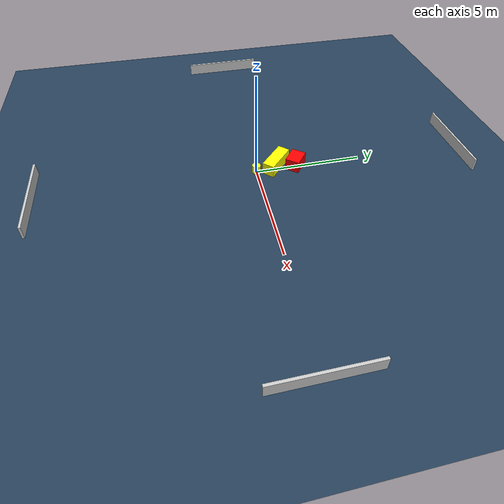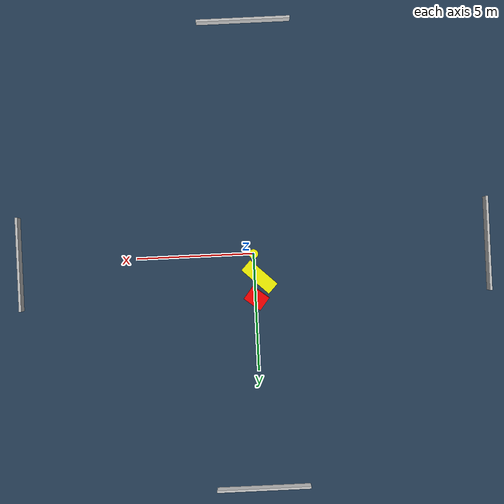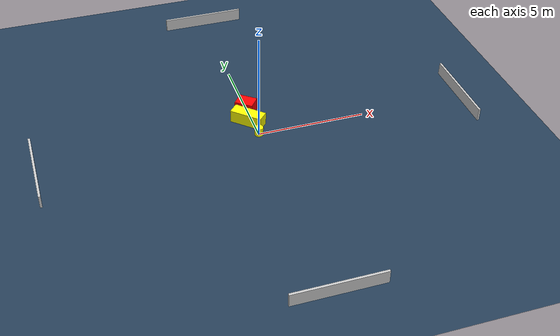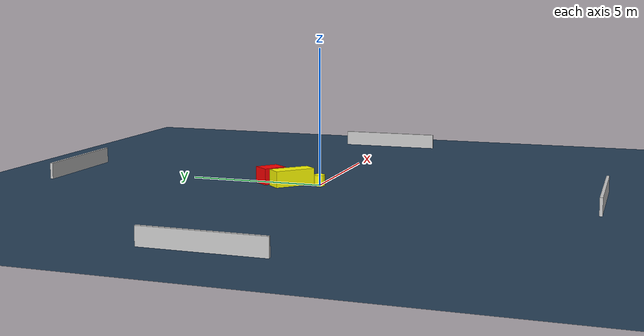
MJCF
<?xml version="1.0" ?>
<mujoco model="generated_environment">
  <option timestep="0.01" integrator="RK4" cone="elliptic"/>
  <default>
    <geom density="1"/>
  </default>
  <asset>
    <texture builtin="gradient" height="3072" name="skybox" rgb1="0.3 0.5 0.7" rgb2="0 0 0" type="skybox" width="512"/>
    <texture builtin="checker" height="300" name="groundplane" rgb1="0.2 0.3 0.4" rgb2="0.1 0.2 0.3" type="2d" width="300"/>
    <material name="groundplane" reflectance="0.2" texrepeat="5 5" texture="groundplane"/>
  </asset>
  <worldbody>
    <light dir="0 0 -1" directional="true" pos="0 0 1.5"/>
    <geom condim="3" friction="0.5 0.005 0.001" material="groundplane" name="floor" pos="0 0 0" size="0 0 0.05" type="plane"/>
    <body name="walls">
      <geom name="wall_1" condim="4" pos="-10.0 0.0 0.3" rgba="0.800000011920929 0.800000011920929 0.800000011920929 1.0" size="0.05 2.0 0.3" type="box"/>
      <geom name="wall_2" condim="4" pos="10.0 0.0 0.3" rgba="0.800000011920929 0.800000011920929 0.800000011920929 1.0" size="0.05 2.0 0.3" type="box"/>
      <geom name="wall_3" condim="4" pos="0.0 -10.0 0.3" rgba="0.800000011920929 0.800000011920929 0.800000011920929 1.0" size="2.0 0.05 0.3" type="box"/>
      <geom name="wall_4" condim="4" pos="0.0 10.0 0.3" rgba="0.800000011920929 0.800000011920929 0.800000011920929 1.0" size="2.0 0.05 0.3" type="box"/>
    </body>
    <body name="robot">
      <joint name="joint_x" type="slide" pos="0 0 0" axis="1 0 0"/>
      <joint name="joint_y" type="slide" pos="0 0 0" axis="0 1 0"/>
      <geom name="robot" type="cylinder" pos="0.0 0.0 0.2" size="0.2 0.2 0.0" mass="5.0" friction="1.0 0.005 0.0001" condim="4" rgba="1.0 1.0 0.0 1.0"/>
    </body>
    <body name="obstacle_1_movable">
      <geom name="obstacle_1_movable" condim="4" pos="-0.2100844170232963 0.9924944921126005 0.3" euler="0 0 46.766475480409824" friction="0.0 0.005 0.001" rgba="1.0 1.0 0.0 1.0" size="0.28663361719057534 0.7661498589797131 0.3" type="box" mass="0.1"/>
      <joint type="free"/>
    </body>
    <body name="obstacle_2_static">
      <geom name="obstacle_2_static" condim="4" pos="-0.044829857598992086 1.8909082646931918 0.3" euler="0 0 321.9169770794754" friction="0.0 0.005 0.001" rgba="1.0 0.0 0.0 1.0" size="0.42771335155356105 0.3334289396295139 0.3" type="box"/>
    </body>
  </worldbody>
  <actuator>
    <motor name="actuator_x" joint="joint_x" gear="1" ctrlrange="-1 1"/>
    <motor name="actuator_y" joint="joint_y" gear="1" ctrlrange="-1 1"/>
  </actuator>
</mujoco>
